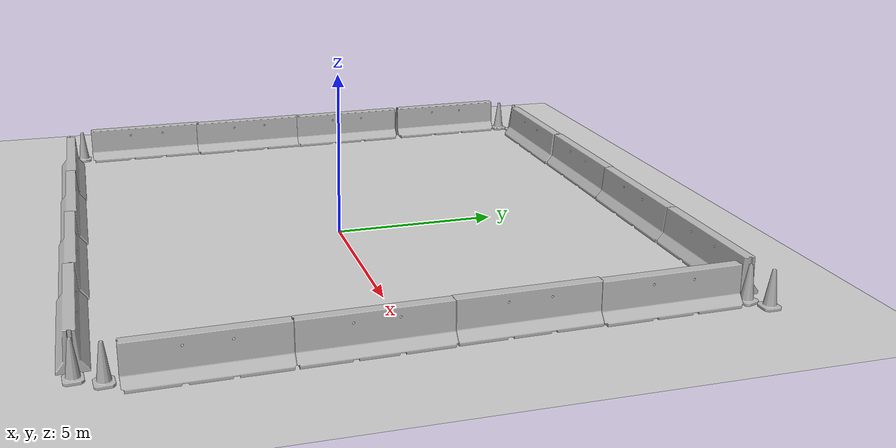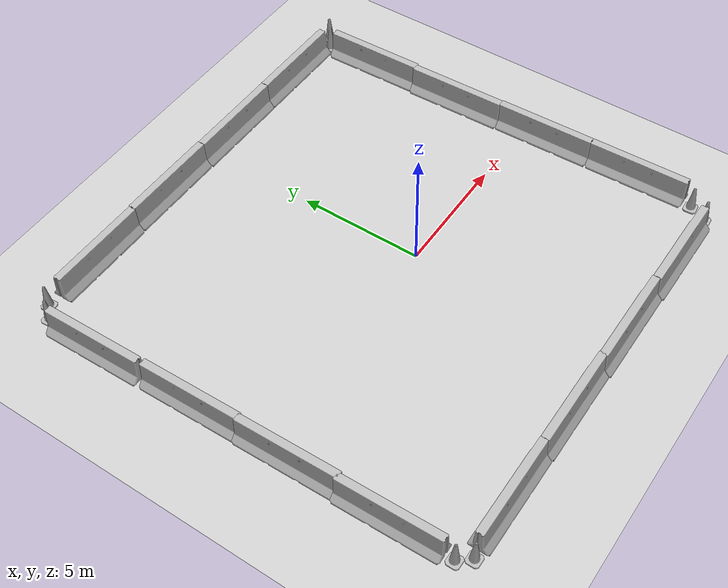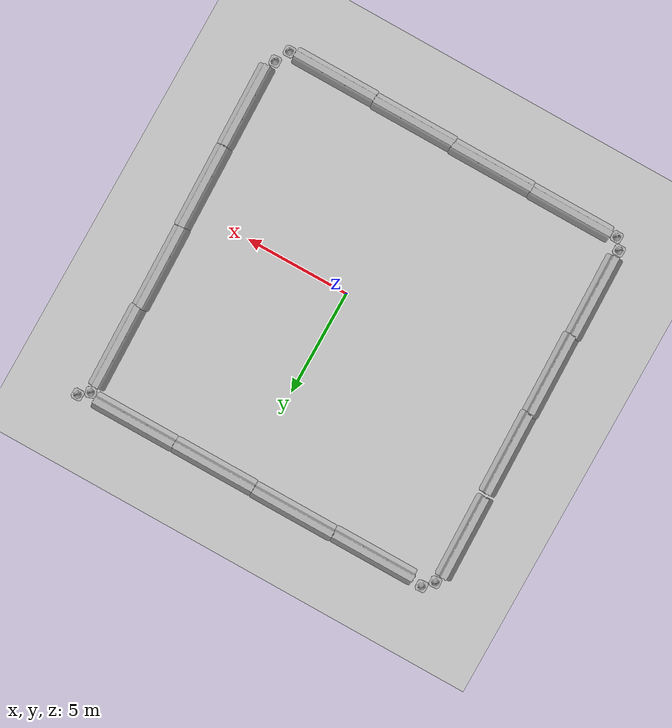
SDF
<sdf version="1.7">
 <world name="default">
  <light name="sun" type="directional">
   <pose>0 0 10 0 -0 0</pose>
   <diffuse>0.8 0.8 0.8 1</diffuse>
   <specular>0.2 0.2 0.2 1</specular>
   <attenuation>
    <range>1000</range>
    <constant>0.9</constant>
    <linear>0.01</linear>
    <quadratic>0.001</quadratic>
   </attenuation>
   <direction>-0.5 0.1 -0.9</direction>
   <spot><inner_angle>0</inner_angle><outer_angle>0</outer_angle><falloff>0</falloff></spot>
  </light>
  <model name="ground_plane">
   <static>1</static>
   <link name="link">
    <collision name="collision">
     <geometry><plane><normal>0 0 1</normal><size>100 100</size></plane></geometry>
     <surface><friction><ode><mu>100</mu><mu2>50</mu2></ode></friction></surface>
    </collision>
    <visual name="visual">
     <cast_shadows>0</cast_shadows>
     <geometry><plane><normal>0 0 1</normal><size>100 100</size></plane></geometry>
     <material>
      <script><uri>file://media/materials/scripts/gazebo.material</uri><name>Gazebo/Grey</name></script>
     </material>
    </visual>
   </link>
  </model>
  <gravity>0 0 -9.8</gravity>
  <magnetic_field>6e-06 2.3e-05 -4.2e-05</magnetic_field>
  <atmosphere type="adiabatic"/>
  <physics type="ode">
   <max_step_size>0.001</max_step_size>
   <real_time_factor>1</real_time_factor>
   <real_time_update_rate>1000</real_time_update_rate>
  </physics>
  <scene><ambient>0.4 0.4 0.4 1</ambient><background>0.7 0.7 0.7 1</background><shadows>1</shadows></scene>
  <audio><device>default</device></audio>
  <spherical_coordinates>
   <surface_model>EARTH_WGS84</surface_model>
   <latitude_deg>0</latitude_deg>
   <longitude_deg>0</longitude_deg>
   <elevation>0</elevation>
   <heading_deg>0</heading_deg>
  </spherical_coordinates>
  <model name="jersey_barrier_8_clone">
   <static>1</static>
   <link name="link">
    <visual name="visual">
     <geometry><mesh><uri>model://jersey_barrier/meshes/jersey_barrier.dae</uri></mesh></geometry>
    </visual>
    <collision name="upright">
     <pose>0 0 0.5715 0 -0 0</pose>
     <geometry><box><size>4.06542 0.3063 1.143</size></box></geometry>
    </collision>
    <collision name="base">
     <pose>0 0 0.032258 0 -0 0</pose>
     <geometry><box><size>4.06542 0.8107 0.064516</size></box></geometry>
    </collision>
    <collision name="base2">
     <pose>0 0 0.1 0 -0 0</pose>
     <geometry><box><size>4.06542 0.65 0.1</size></box></geometry>
    </collision>
    <collision name="base3">
     <pose>0 0 0.2 0 -0 0</pose>
     <geometry><box><size>4.06542 0.5 0.1</size></box></geometry>
    </collision>
    <collision name="left-angle">
     <pose>0 -0.224 0.2401 0.9 -0 0</pose>
     <geometry><box><size>4.06542 0.5 0.064516</size></box></geometry>
    </collision>
    <collision name="right-angle">
     <pose>0 0.224 0.2401 -0.9 0 0</pose>
     <geometry><box><size>4.06542 0.5 0.064516</size></box></geometry>
    </collision>
   </link>
   <pose>-9.8103 6.83587 0 0 0 -1.54797</pose>
  </model>
  <model name="jersey_barrier_8_clone_0">
   <static>1</static>
   <link name="link">
    <visual name="visual">
     <geometry><mesh><uri>model://jersey_barrier/meshes/jersey_barrier.dae</uri></mesh></geometry>
    </visual>
    <collision name="upright">
     <pose>0 0 0.5715 0 -0 0</pose>
     <geometry><box><size>4.06542 0.3063 1.143</size></box></geometry>
    </collision>
    <collision name="base">
     <pose>0 0 0.032258 0 -0 0</pose>
     <geometry><box><size>4.06542 0.8107 0.064516</size></box></geometry>
    </collision>
    <collision name="base2">
     <pose>0 0 0.1 0 -0 0</pose>
     <geometry><box><size>4.06542 0.65 0.1</size></box></geometry>
    </collision>
    <collision name="base3">
     <pose>0 0 0.2 0 -0 0</pose>
     <geometry><box><size>4.06542 0.5 0.1</size></box></geometry>
    </collision>
    <collision name="left-angle">
     <pose>0 -0.224 0.2401 0.9 -0 0</pose>
     <geometry><box><size>4.06542 0.5 0.064516</size></box></geometry>
    </collision>
    <collision name="right-angle">
     <pose>0 0.224 0.2401 -0.9 0 0</pose>
     <geometry><box><size>4.06542 0.5 0.064516</size></box></geometry>
    </collision>
   </link>
   <pose>-9.68807 2.64506 0 0 0 -1.54797</pose>
  </model>
  <model name="jersey_barrier_8_clone_1">
   <static>1</static>
   <link name="link">
    <visual name="visual">
     <geometry><mesh><uri>model://jersey_barrier/meshes/jersey_barrier.dae</uri></mesh></geometry>
    </visual>
    <collision name="upright">
     <pose>0 0 0.5715 0 -0 0</pose>
     <geometry><box><size>4.06542 0.3063 1.143</size></box></geometry>
    </collision>
    <collision name="base">
     <pose>0 0 0.032258 0 -0 0</pose>
     <geometry><box><size>4.06542 0.8107 0.064516</size></box></geometry>
    </collision>
    <collision name="base2">
     <pose>0 0 0.1 0 -0 0</pose>
     <geometry><box><size>4.06542 0.65 0.1</size></box></geometry>
    </collision>
    <collision name="base3">
     <pose>0 0 0.2 0 -0 0</pose>
     <geometry><box><size>4.06542 0.5 0.1</size></box></geometry>
    </collision>
    <collision name="left-angle">
     <pose>0 -0.224 0.2401 0.9 -0 0</pose>
     <geometry><box><size>4.06542 0.5 0.064516</size></box></geometry>
    </collision>
    <collision name="right-angle">
     <pose>0 0.224 0.2401 -0.9 0 0</pose>
     <geometry><box><size>4.06542 0.5 0.064516</size></box></geometry>
    </collision>
   </link>
   <pose>-9.63627 -1.29115 0 0 0 -1.54797</pose>
  </model>
  <model name="jersey_barrier_8_clone_2">
   <static>1</static>
   <link name="link">
    <visual name="visual">
     <geometry><mesh><uri>model://jersey_barrier/meshes/jersey_barrier.dae</uri></mesh></geometry>
    </visual>
    <collision name="upright">
     <pose>0 0 0.5715 0 -0 0</pose>
     <geometry><box><size>4.06542 0.3063 1.143</size></box></geometry>
    </collision>
    <collision name="base">
     <pose>0 0 0.032258 0 -0 0</pose>
     <geometry><box><size>4.06542 0.8107 0.064516</size></box></geometry>
    </collision>
    <collision name="base2">
     <pose>0 0 0.1 0 -0 0</pose>
     <geometry><box><size>4.06542 0.65 0.1</size></box></geometry>
    </collision>
    <collision name="base3">
     <pose>0 0 0.2 0 -0 0</pose>
     <geometry><box><size>4.06542 0.5 0.1</size></box></geometry>
    </collision>
    <collision name="left-angle">
     <pose>0 -0.224 0.2401 0.9 -0 0</pose>
     <geometry><box><size>4.06542 0.5 0.064516</size></box></geometry>
    </collision>
    <collision name="right-angle">
     <pose>0 0.224 0.2401 -0.9 0 0</pose>
     <geometry><box><size>4.06542 0.5 0.064516</size></box></geometry>
    </collision>
   </link>
   <pose>-9.61591 -5.22984 0 0 0 -1.54797</pose>
  </model>
  <model name="Construction Cone_0_clone">
   <link name="link">
    <collision name="collision">
     <geometry>
      <mesh><scale>10 10 10</scale><uri>model://construction_cone/meshes/construction_cone.dae</uri></mesh>
     </geometry>
    </collision>
    <visual name="visual">
     <geometry>
      <mesh><scale>10 10 10</scale><uri>model://construction_cone/meshes/construction_cone.dae</uri></mesh>
     </geometry>
    </visual>
    <inertial>
     <inertia><ixx>1</ixx><ixy>0</ixy><ixz>0</ixz><iyy>1</iyy><iyz>0</iyz><izz>1</izz></inertia>
     <mass>1</mass>
    </inertial>
   </link>
   <pose>-9.57844 -7.58932 -0 0 -0 0</pose>
  </model>
  <model name="Construction Cone_0_clone_0">
   <link name="link">
    <collision name="collision">
     <geometry>
      <mesh><scale>10 10 10</scale><uri>model://construction_cone/meshes/construction_cone.dae</uri></mesh>
     </geometry>
    </collision>
    <visual name="visual">
     <geometry>
      <mesh><scale>10 10 10</scale><uri>model://construction_cone/meshes/construction_cone.dae</uri></mesh>
     </geometry>
    </visual>
    <inertial>
     <inertia><ixx>1</ixx><ixy>0</ixy><ixz>0</ixz><iyy>1</iyy><iyz>0</iyz><izz>1</izz></inertia>
     <mass>1</mass>
    </inertial>
   </link>
   <pose>-9.19483 -8.06947 -0 0 -1e-06 0</pose>
  </model>
  <model name="jersey_barrier_clone">
   <static>1</static>
   <link name="link">
    <visual name="visual">
     <geometry><mesh><uri>model://jersey_barrier/meshes/jersey_barrier.dae</uri></mesh></geometry>
    </visual>
    <collision name="upright">
     <pose>0 0 0.5715 0 -0 0</pose>
     <geometry><box><size>4.06542 0.3063 1.143</size></box></geometry>
    </collision>
    <collision name="base">
     <pose>0 0 0.032258 0 -0 0</pose>
     <geometry><box><size>4.06542 0.8107 0.064516</size></box></geometry>
    </collision>
    <collision name="base2">
     <pose>0 0 0.1 0 -0 0</pose>
     <geometry><box><size>4.06542 0.65 0.1</size></box></geometry>
    </collision>
    <collision name="base3">
     <pose>0 0 0.2 0 -0 0</pose>
     <geometry><box><size>4.06542 0.5 0.1</size></box></geometry>
    </collision>
    <collision name="left-angle">
     <pose>0 -0.224 0.2401 0.9 -0 0</pose>
     <geometry><box><size>4.06542 0.5 0.064516</size></box></geometry>
    </collision>
    <collision name="right-angle">
     <pose>0 0.224 0.2401 -0.9 0 0</pose>
     <geometry><box><size>4.06542 0.5 0.064516</size></box></geometry>
    </collision>
   </link>
   <pose>-6.8668 -7.99904 0 0 -0 0</pose>
  </model>
  <model name="jersey_barrier_clone_0">
   <static>1</static>
   <link name="link">
    <visual name="visual">
     <geometry><mesh><uri>model://jersey_barrier/meshes/jersey_barrier.dae</uri></mesh></geometry>
    </visual>
    <collision name="upright">
     <pose>0 0 0.5715 0 -0 0</pose>
     <geometry><box><size>4.06542 0.3063 1.143</size></box></geometry>
    </collision>
    <collision name="base">
     <pose>0 0 0.032258 0 -0 0</pose>
     <geometry><box><size>4.06542 0.8107 0.064516</size></box></geometry>
    </collision>
    <collision name="base2">
     <pose>0 0 0.1 0 -0 0</pose>
     <geometry><box><size>4.06542 0.65 0.1</size></box></geometry>
    </collision>
    <collision name="base3">
     <pose>0 0 0.2 0 -0 0</pose>
     <geometry><box><size>4.06542 0.5 0.1</size></box></geometry>
    </collision>
    <collision name="left-angle">
     <pose>0 -0.224 0.2401 0.9 -0 0</pose>
     <geometry><box><size>4.06542 0.5 0.064516</size></box></geometry>
    </collision>
    <collision name="right-angle">
     <pose>0 0.224 0.2401 -0.9 0 0</pose>
     <geometry><box><size>4.06542 0.5 0.064516</size></box></geometry>
    </collision>
   </link>
   <pose>-2.84877 -8.02673 0 0 -0 0</pose>
  </model>
  <model name="jersey_barrier_clone_1">
   <static>1</static>
   <link name="link">
    <visual name="visual">
     <geometry><mesh><uri>model://jersey_barrier/meshes/jersey_barrier.dae</uri></mesh></geometry>
    </visual>
    <collision name="upright">
     <pose>0 0 0.5715 0 -0 0</pose>
     <geometry><box><size>4.06542 0.3063 1.143</size></box></geometry>
    </collision>
    <collision name="base">
     <pose>0 0 0.032258 0 -0 0</pose>
     <geometry><box><size>4.06542 0.8107 0.064516</size></box></geometry>
    </collision>
    <collision name="base2">
     <pose>0 0 0.1 0 -0 0</pose>
     <geometry><box><size>4.06542 0.65 0.1</size></box></geometry>
    </collision>
    <collision name="base3">
     <pose>0 0 0.2 0 -0 0</pose>
     <geometry><box><size>4.06542 0.5 0.1</size></box></geometry>
    </collision>
    <collision name="left-angle">
     <pose>0 -0.224 0.2401 0.9 -0 0</pose>
     <geometry><box><size>4.06542 0.5 0.064516</size></box></geometry>
    </collision>
    <collision name="right-angle">
     <pose>0 0.224 0.2401 -0.9 0 0</pose>
     <geometry><box><size>4.06542 0.5 0.064516</size></box></geometry>
    </collision>
   </link>
   <pose>1.12355 -8.07586 0 0 -0 0</pose>
  </model>
  <model name="jersey_barrier_clone_2">
   <static>1</static>
   <link name="link">
    <visual name="visual">
     <geometry><mesh><uri>model://jersey_barrier/meshes/jersey_barrier.dae</uri></mesh></geometry>
    </visual>
    <collision name="upright">
     <pose>0 0 0.5715 0 -0 0</pose>
     <geometry><box><size>4.06542 0.3063 1.143</size></box></geometry>
    </collision>
    <collision name="base">
     <pose>0 0 0.032258 0 -0 0</pose>
     <geometry><box><size>4.06542 0.8107 0.064516</size></box></geometry>
    </collision>
    <collision name="base2">
     <pose>0 0 0.1 0 -0 0</pose>
     <geometry><box><size>4.06542 0.65 0.1</size></box></geometry>
    </collision>
    <collision name="base3">
     <pose>0 0 0.2 0 -0 0</pose>
     <geometry><box><size>4.06542 0.5 0.1</size></box></geometry>
    </collision>
    <collision name="left-angle">
     <pose>0 -0.224 0.2401 0.9 -0 0</pose>
     <geometry><box><size>4.06542 0.5 0.064516</size></box></geometry>
    </collision>
    <collision name="right-angle">
     <pose>0 0.224 0.2401 -0.9 0 0</pose>
     <geometry><box><size>4.06542 0.5 0.064516</size></box></geometry>
    </collision>
   </link>
   <pose>5.15124 -8.12649 0 0 -0 0</pose>
  </model>
  <model name="Construction Cone_1_clone_0">
   <link name="link">
    <collision name="collision">
     <geometry>
      <mesh><scale>10 10 10</scale><uri>model://construction_cone/meshes/construction_cone.dae</uri></mesh>
     </geometry>
    </collision>
    <visual name="visual">
     <geometry>
      <mesh><scale>10 10 10</scale><uri>model://construction_cone/meshes/construction_cone.dae</uri></mesh>
     </geometry>
    </visual>
    <inertial>
     <inertia><ixx>1</ixx><ixy>0</ixy><ixz>0</ixz><iyy>1</iyy><iyz>0</iyz><izz>1</izz></inertia>
     <mass>1</mass>
    </inertial>
   </link>
   <pose>7.81298 -7.43812 -0 0 -0 0.07753</pose>
  </model>
  <model name="Construction Cone_1_clone">
   <link name="link">
    <collision name="collision">
     <geometry>
      <mesh><scale>10 10 10</scale><uri>model://construction_cone/meshes/construction_cone.dae</uri></mesh>
     </geometry>
    </collision>
    <visual name="visual">
     <geometry>
      <mesh><scale>10 10 10</scale><uri>model://construction_cone/meshes/construction_cone.dae</uri></mesh>
     </geometry>
    </visual>
    <inertial>
     <inertia><ixx>1</ixx><ixy>0</ixy><ixz>0</ixz><iyy>1</iyy><iyz>0</iyz><izz>1</izz></inertia>
     <mass>1</mass>
    </inertial>
   </link>
   <pose>7.46689 -8.12768 0 0 -0 0.07753</pose>
  </model>
  <model name="jersey_barrier_clone_clone">
   <static>1</static>
   <link name="link">
    <visual name="visual">
     <geometry><mesh><uri>model://jersey_barrier/meshes/jersey_barrier.dae</uri></mesh></geometry>
    </visual>
    <collision name="upright">
     <pose>0 0 0.5715 0 -0 0</pose>
     <geometry><box><size>4.06542 0.3063 1.143</size></box></geometry>
    </collision>
    <collision name="base">
     <pose>0 0 0.032258 0 -0 0</pose>
     <geometry><box><size>4.06542 0.8107 0.064516</size></box></geometry>
    </collision>
    <collision name="base2">
     <pose>0 0 0.1 0 -0 0</pose>
     <geometry><box><size>4.06542 0.65 0.1</size></box></geometry>
    </collision>
    <collision name="base3">
     <pose>0 0 0.2 0 -0 0</pose>
     <geometry><box><size>4.06542 0.5 0.1</size></box></geometry>
    </collision>
    <collision name="left-angle">
     <pose>0 -0.224 0.2401 0.9 -0 0</pose>
     <geometry><box><size>4.06542 0.5 0.064516</size></box></geometry>
    </collision>
    <collision name="right-angle">
     <pose>0 0.224 0.2401 -0.9 0 0</pose>
     <geometry><box><size>4.06542 0.5 0.064516</size></box></geometry>
    </collision>
   </link>
   <pose>-6.70067 9.50372 0 0 -0 0</pose>
  </model>
  <model name="jersey_barrier_clone_clone_0">
   <static>1</static>
   <link name="link">
    <visual name="visual">
     <geometry><mesh><uri>model://jersey_barrier/meshes/jersey_barrier.dae</uri></mesh></geometry>
    </visual>
    <collision name="upright">
     <pose>0 0 0.5715 0 -0 0</pose>
     <geometry><box><size>4.06542 0.3063 1.143</size></box></geometry>
    </collision>
    <collision name="base">
     <pose>0 0 0.032258 0 -0 0</pose>
     <geometry><box><size>4.06542 0.8107 0.064516</size></box></geometry>
    </collision>
    <collision name="base2">
     <pose>0 0 0.1 0 -0 0</pose>
     <geometry><box><size>4.06542 0.65 0.1</size></box></geometry>
    </collision>
    <collision name="base3">
     <pose>0 0 0.2 0 -0 0</pose>
     <geometry><box><size>4.06542 0.5 0.1</size></box></geometry>
    </collision>
    <collision name="left-angle">
     <pose>0 -0.224 0.2401 0.9 -0 0</pose>
     <geometry><box><size>4.06542 0.5 0.064516</size></box></geometry>
    </collision>
    <collision name="right-angle">
     <pose>0 0.224 0.2401 -0.9 0 0</pose>
     <geometry><box><size>4.06542 0.5 0.064516</size></box></geometry>
    </collision>
   </link>
   <pose>-2.6509 9.53451 0 0 -0 0</pose>
  </model>
  <model name="jersey_barrier_clone_clone_1">
   <static>1</static>
   <link name="link">
    <visual name="visual">
     <geometry><mesh><uri>model://jersey_barrier/meshes/jersey_barrier.dae</uri></mesh></geometry>
    </visual>
    <collision name="upright">
     <pose>0 0 0.5715 0 -0 0</pose>
     <geometry><box><size>4.06542 0.3063 1.143</size></box></geometry>
    </collision>
    <collision name="base">
     <pose>0 0 0.032258 0 -0 0</pose>
     <geometry><box><size>4.06542 0.8107 0.064516</size></box></geometry>
    </collision>
    <collision name="base2">
     <pose>0 0 0.1 0 -0 0</pose>
     <geometry><box><size>4.06542 0.65 0.1</size></box></geometry>
    </collision>
    <collision name="base3">
     <pose>0 0 0.2 0 -0 0</pose>
     <geometry><box><size>4.06542 0.5 0.1</size></box></geometry>
    </collision>
    <collision name="left-angle">
     <pose>0 -0.224 0.2401 0.9 -0 0</pose>
     <geometry><box><size>4.06542 0.5 0.064516</size></box></geometry>
    </collision>
    <collision name="right-angle">
     <pose>0 0.224 0.2401 -0.9 0 0</pose>
     <geometry><box><size>4.06542 0.5 0.064516</size></box></geometry>
    </collision>
   </link>
   <pose>1.38483 9.51046 0 0 -0 0</pose>
  </model>
  <model name="jersey_barrier_clone_clone_2">
   <static>1</static>
   <link name="link">
    <visual name="visual">
     <geometry><mesh><uri>model://jersey_barrier/meshes/jersey_barrier.dae</uri></mesh></geometry>
    </visual>
    <collision name="upright">
     <pose>0 0 0.5715 0 -0 0</pose>
     <geometry><box><size>4.06542 0.3063 1.143</size></box></geometry>
    </collision>
    <collision name="base">
     <pose>0 0 0.032258 0 -0 0</pose>
     <geometry><box><size>4.06542 0.8107 0.064516</size></box></geometry>
    </collision>
    <collision name="base2">
     <pose>0 0 0.1 0 -0 0</pose>
     <geometry><box><size>4.06542 0.65 0.1</size></box></geometry>
    </collision>
    <collision name="base3">
     <pose>0 0 0.2 0 -0 0</pose>
     <geometry><box><size>4.06542 0.5 0.1</size></box></geometry>
    </collision>
    <collision name="left-angle">
     <pose>0 -0.224 0.2401 0.9 -0 0</pose>
     <geometry><box><size>4.06542 0.5 0.064516</size></box></geometry>
    </collision>
    <collision name="right-angle">
     <pose>0 0.224 0.2401 -0.9 0 0</pose>
     <geometry><box><size>4.06542 0.5 0.064516</size></box></geometry>
    </collision>
   </link>
   <pose>5.41092 9.51765 0 0 -0 0</pose>
  </model>
  <model name="jersey_barrier_8_clone_2_clone">
   <static>1</static>
   <link name="link">
    <visual name="visual">
     <geometry><mesh><uri>model://jersey_barrier/meshes/jersey_barrier.dae</uri></mesh></geometry>
    </visual>
    <collision name="upright">
     <pose>0 0 0.5715 0 -0 0</pose>
     <geometry><box><size>4.06542 0.3063 1.143</size></box></geometry>
    </collision>
    <collision name="base">
     <pose>0 0 0.032258 0 -0 0</pose>
     <geometry><box><size>4.06542 0.8107 0.064516</size></box></geometry>
    </collision>
    <collision name="base2">
     <pose>0 0 0.1 0 -0 0</pose>
     <geometry><box><size>4.06542 0.65 0.1</size></box></geometry>
    </collision>
    <collision name="base3">
     <pose>0 0 0.2 0 -0 0</pose>
     <geometry><box><size>4.06542 0.5 0.1</size></box></geometry>
    </collision>
    <collision name="left-angle">
     <pose>0 -0.224 0.2401 0.9 -0 0</pose>
     <geometry><box><size>4.06542 0.5 0.064516</size></box></geometry>
    </collision>
    <collision name="right-angle">
     <pose>0 0.224 0.2401 -0.9 0 0</pose>
     <geometry><box><size>4.06542 0.5 0.064516</size></box></geometry>
    </collision>
   </link>
   <pose>7.93996 -5.06361 0 0 0 -1.54797</pose>
  </model>
  <model name="jersey_barrier_8_clone_2_clone_0">
   <static>1</static>
   <link name="link">
    <visual name="visual">
     <geometry><mesh><uri>model://jersey_barrier/meshes/jersey_barrier.dae</uri></mesh></geometry>
    </visual>
    <collision name="upright">
     <pose>0 0 0.5715 0 -0 0</pose>
     <geometry><box><size>4.06542 0.3063 1.143</size></box></geometry>
    </collision>
    <collision name="base">
     <pose>0 0 0.032258 0 -0 0</pose>
     <geometry><box><size>4.06542 0.8107 0.064516</size></box></geometry>
    </collision>
    <collision name="base2">
     <pose>0 0 0.1 0 -0 0</pose>
     <geometry><box><size>4.06542 0.65 0.1</size></box></geometry>
    </collision>
    <collision name="base3">
     <pose>0 0 0.2 0 -0 0</pose>
     <geometry><box><size>4.06542 0.5 0.1</size></box></geometry>
    </collision>
    <collision name="left-angle">
     <pose>0 -0.224 0.2401 0.9 -0 0</pose>
     <geometry><box><size>4.06542 0.5 0.064516</size></box></geometry>
    </collision>
    <collision name="right-angle">
     <pose>0 0.224 0.2401 -0.9 0 0</pose>
     <geometry><box><size>4.06542 0.5 0.064516</size></box></geometry>
    </collision>
   </link>
   <pose>7.84292 -1.01214 0 0 0 -1.54797</pose>
  </model>
  <model name="jersey_barrier_8_clone_2_clone_1">
   <static>1</static>
   <link name="link">
    <visual name="visual">
     <geometry><mesh><uri>model://jersey_barrier/meshes/jersey_barrier.dae</uri></mesh></geometry>
    </visual>
    <collision name="upright">
     <pose>0 0 0.5715 0 -0 0</pose>
     <geometry><box><size>4.06542 0.3063 1.143</size></box></geometry>
    </collision>
    <collision name="base">
     <pose>0 0 0.032258 0 -0 0</pose>
     <geometry><box><size>4.06542 0.8107 0.064516</size></box></geometry>
    </collision>
    <collision name="base2">
     <pose>0 0 0.1 0 -0 0</pose>
     <geometry><box><size>4.06542 0.65 0.1</size></box></geometry>
    </collision>
    <collision name="base3">
     <pose>0 0 0.2 0 -0 0</pose>
     <geometry><box><size>4.06542 0.5 0.1</size></box></geometry>
    </collision>
    <collision name="left-angle">
     <pose>0 -0.224 0.2401 0.9 -0 0</pose>
     <geometry><box><size>4.06542 0.5 0.064516</size></box></geometry>
    </collision>
    <collision name="right-angle">
     <pose>0 0.224 0.2401 -0.9 0 0</pose>
     <geometry><box><size>4.06542 0.5 0.064516</size></box></geometry>
    </collision>
   </link>
   <pose>7.72026 2.99798 0 0 0 -1.54797</pose>
  </model>
  <model name="jersey_barrier_8_clone_2_clone_2">
   <static>1</static>
   <link name="link">
    <visual name="visual">
     <geometry><mesh><uri>model://jersey_barrier/meshes/jersey_barrier.dae</uri></mesh></geometry>
    </visual>
    <collision name="upright">
     <pose>0 0 0.5715 0 -0 0</pose>
     <geometry><box><size>4.06542 0.3063 1.143</size></box></geometry>
    </collision>
    <collision name="base">
     <pose>0 0 0.032258 0 -0 0</pose>
     <geometry><box><size>4.06542 0.8107 0.064516</size></box></geometry>
    </collision>
    <collision name="base2">
     <pose>0 0 0.1 0 -0 0</pose>
     <geometry><box><size>4.06542 0.65 0.1</size></box></geometry>
    </collision>
    <collision name="base3">
     <pose>0 0 0.2 0 -0 0</pose>
     <geometry><box><size>4.06542 0.5 0.1</size></box></geometry>
    </collision>
    <collision name="left-angle">
     <pose>0 -0.224 0.2401 0.9 -0 0</pose>
     <geometry><box><size>4.06542 0.5 0.064516</size></box></geometry>
    </collision>
    <collision name="right-angle">
     <pose>0 0.224 0.2401 -0.9 0 0</pose>
     <geometry><box><size>4.06542 0.5 0.064516</size></box></geometry>
    </collision>
   </link>
   <pose>7.69983 7.00784 0 0 0 -1.54797</pose>
  </model>
  <model name="Construction Cone_1_clone_clone">
   <link name="link">
    <collision name="collision">
     <geometry>
      <mesh><scale>10 10 10</scale><uri>model://construction_cone/meshes/construction_cone.dae</uri></mesh>
     </geometry>
    </collision>
    <visual name="visual">
     <geometry>
      <mesh><scale>10 10 10</scale><uri>model://construction_cone/meshes/construction_cone.dae</uri></mesh>
     </geometry>
    </visual>
    <inertial>
     <inertia><ixx>1</ixx><ixy>0</ixy><ixz>0</ixz><iyy>1</iyy><iyz>0</iyz><izz>1</izz></inertia>
     <mass>1</mass>
    </inertial>
   </link>
   <pose>7.73752 9.33836 0 -1e-06 -0 -2.80394</pose>
  </model>
  <model name="Construction Cone_1_clone_clone_0">
   <link name="link">
    <collision name="collision">
     <geometry>
      <mesh><scale>10 10 10</scale><uri>model://construction_cone/meshes/construction_cone.dae</uri></mesh>
     </geometry>
    </collision>
    <visual name="visual">
     <geometry>
      <mesh><scale>10 10 10</scale><uri>model://construction_cone/meshes/construction_cone.dae</uri></mesh>
     </geometry>
    </visual>
    <inertial>
     <inertia><ixx>1</ixx><ixy>0</ixy><ixz>0</ixz><iyy>1</iyy><iyz>0</iyz><izz>1</izz></inertia>
     <mass>1</mass>
    </inertial>
   </link>
   <pose>8.20558 9.71158 0 0 -0 0.004736</pose>
  </model>
  <model name="Construction Cone_1_clone_clone_1">
   <link name="link">
    <collision name="collision">
     <geometry>
      <mesh><scale>10 10 10</scale><uri>model://construction_cone/meshes/construction_cone.dae</uri></mesh>
     </geometry>
    </collision>
    <visual name="visual">
     <geometry>
      <mesh><scale>10 10 10</scale><uri>model://construction_cone/meshes/construction_cone.dae</uri></mesh>
     </geometry>
    </visual>
    <inertial>
     <inertia><ixx>1</ixx><ixy>0</ixy><ixz>0</ixz><iyy>1</iyy><iyz>0</iyz><izz>1</izz></inertia>
     <mass>1</mass>
    </inertial>
   </link>
   <pose>-9.68099 9.19811 -0 0 -0 0.07753</pose>
  </model>
  <model name="Construction Cone_1_clone_clone_2">
   <link name="link">
    <collision name="collision">
     <geometry>
      <mesh><scale>10 10 10</scale><uri>model://construction_cone/meshes/construction_cone.dae</uri></mesh>
     </geometry>
    </collision>
    <visual name="visual">
     <geometry>
      <mesh><scale>10 10 10</scale><uri>model://construction_cone/meshes/construction_cone.dae</uri></mesh>
     </geometry>
    </visual>
    <inertial>
     <inertia><ixx>1</ixx><ixy>0</ixy><ixz>0</ixz><iyy>1</iyy><iyz>0</iyz><izz>1</izz></inertia>
     <mass>1</mass>
    </inertial>
   </link>
   <pose>-9.23215 9.64929 -0 -0 -1e-06 0.07753</pose>
  </model>
 </world>
</sdf>
